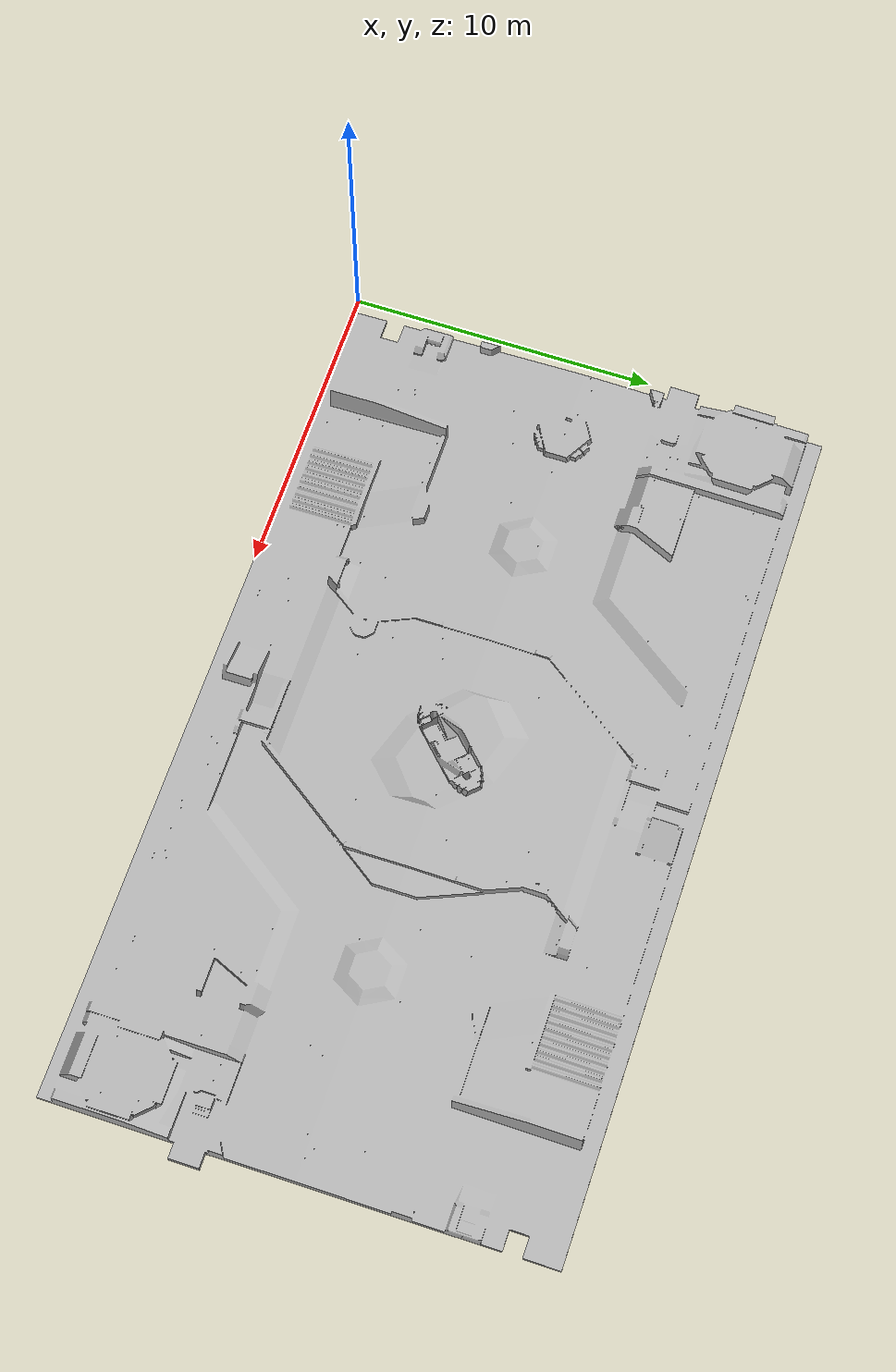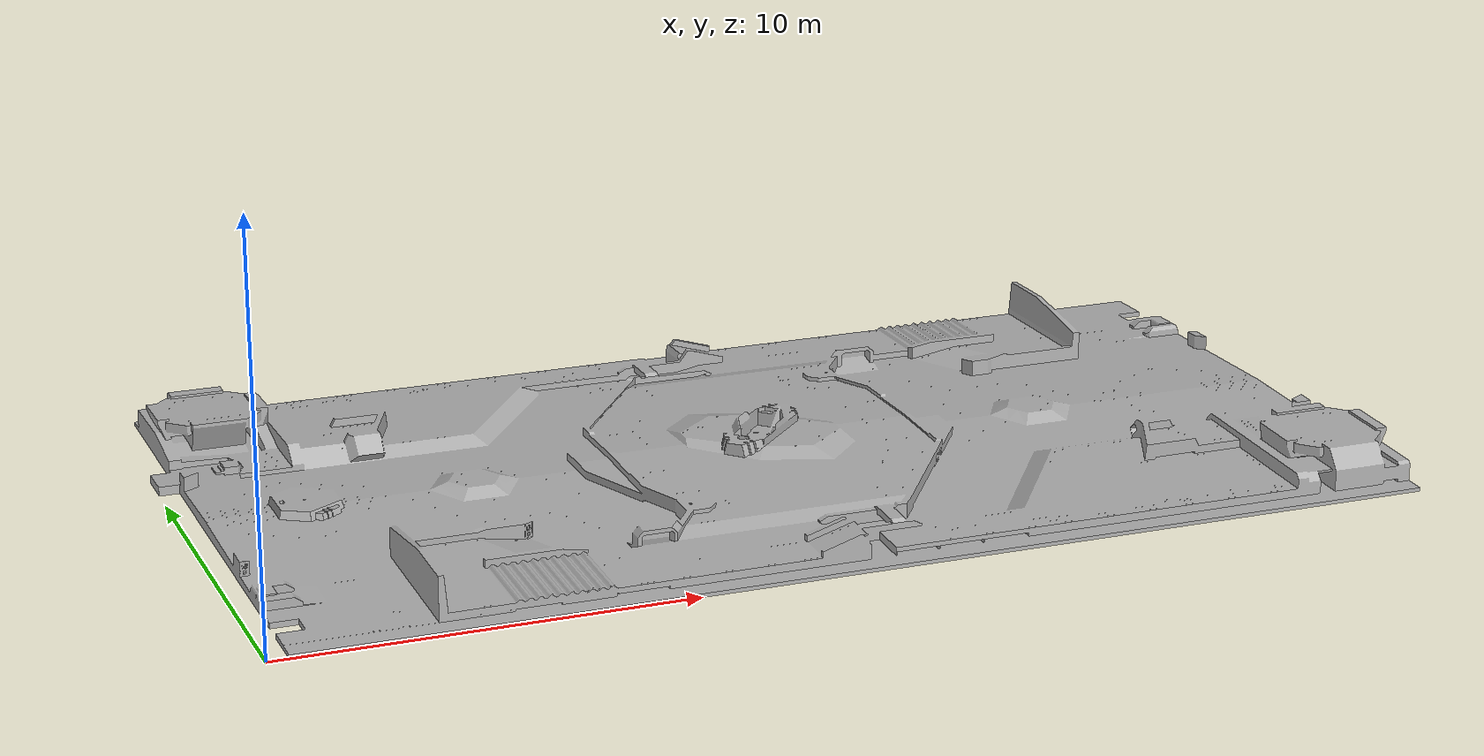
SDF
<?xml version='1.0' encoding='utf-8'?>
<sdf version='1.7'>
  <world name='default'>
    <!-- Physics -->
    <plugin filename="gz-sim-physics-system" name="gz::sim::systems::Physics">
    </plugin>

    <!-- Forwards simulation state to the GUI -->
    <plugin filename="gz-sim-scene-broadcaster-system" name="gz::sim::systems::SceneBroadcaster">
    </plugin>

    <!-- Processes user commands, like translate and create -->
    <plugin filename="gz-sim-user-commands-system" name="gz::sim::systems::UserCommands">
    </plugin>

    <!-- Generates rendering sensor data -->
    <plugin filename="gz-sim-sensors-system" name="gz::sim::systems::Sensors">
      <render_engine>ogre2</render_engine>
    </plugin>

    <plugin filename="gz-sim-imu-system" name="gz::sim::systems::Imu">
    </plugin>

    <light type='directional' name='direct_light'>
      <visualize>false</visualize>
      <cast_shadows>true</cast_shadows>
      <pose>14.5 8 10 0 0 0</pose>
      <diffuse>1.0 1.0 1.0 1</diffuse>
      <specular>0.5 0.5 0.5 1</specular>
      <attenuation>
        <range>1000</range>
        <constant>0.9</constant>
        <linear>0.01</linear>
        <quadratic>0.001</quadratic>
      </attenuation>
      <direction>0 0 -1</direction>
    </light>

    <model name='rmuc_2026'>
      <include>
        <uri>model://rmuc_2026</uri>
      </include>
      <pose>0.0 0.0 0 0 0 0</pose>
      <static>true</static>
    </model>
  </world>
</sdf>

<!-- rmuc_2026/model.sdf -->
<sdf version='1.6'>
  <model name='rmuc_2026'>
    <static>true</static>
    <link name='body'>
      <!-- Mesh origin is the field corner, mm units, so scale 0.001 and pose 0 0 0 -->
      <pose frame=''>0 0 0 0 0 0</pose>
      <self_collide>0</self_collide>
      <kinematic>0</kinematic>
      <gravity>1</gravity>
      <visual name='visual'>
        <geometry>
          <mesh>
            <uri>model://rmuc_2026/meshes/rmuc_2026.stl</uri>
            <scale>0.001 0.001 0.001</scale>
          </mesh>
        </geometry>
        <material>
          <ambient>0.3 0.3 0.3 1</ambient>
          <diffuse>0.7 0.7 0.7 1</diffuse>
          <specular>0.01 0.01 0.01 1</specular>
        </material>
      </visual>
      <collision name='collision'>
        <geometry>
          <mesh>
            <uri>model://rmuc_2026/meshes/rmuc_2026.stl</uri>
            <scale>0.001 0.001 0.001</scale>
          </mesh>
        </geometry>
      </collision>
    </link>
  </model>
</sdf>
